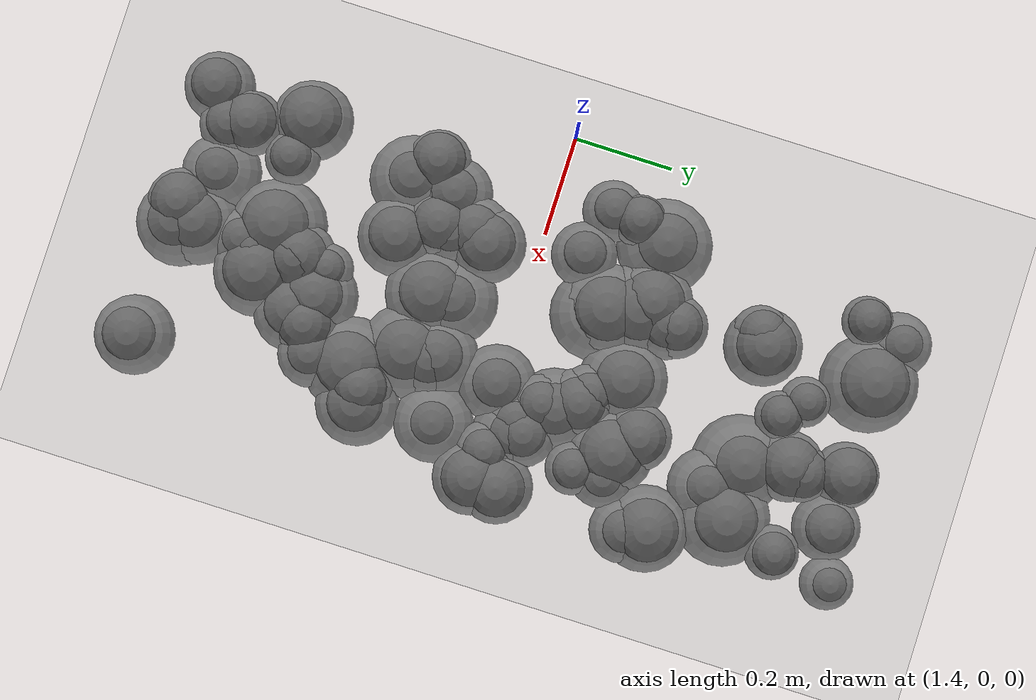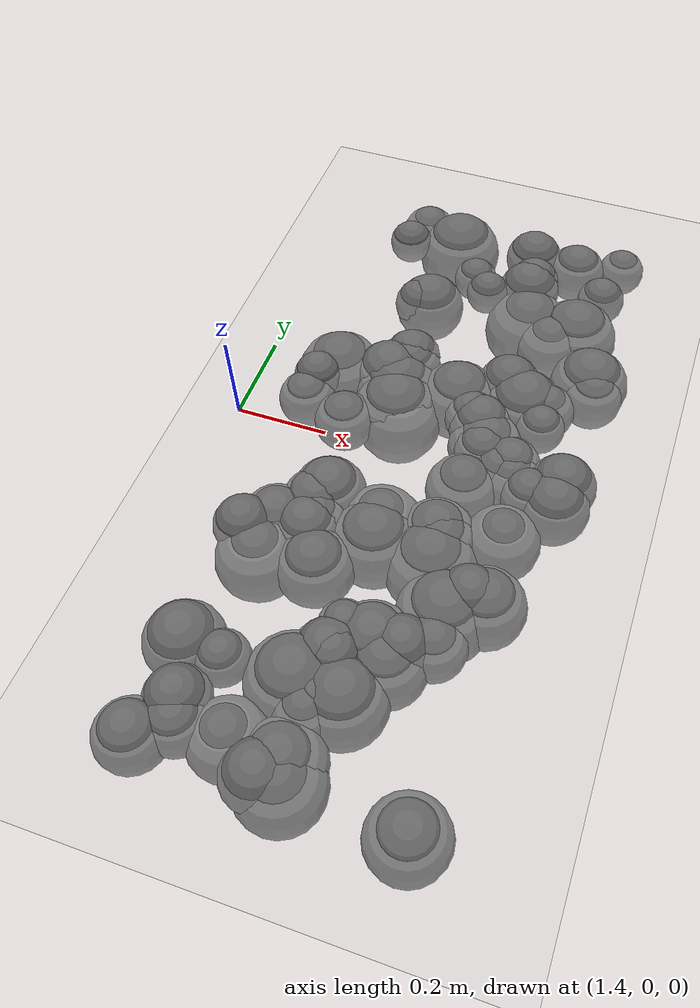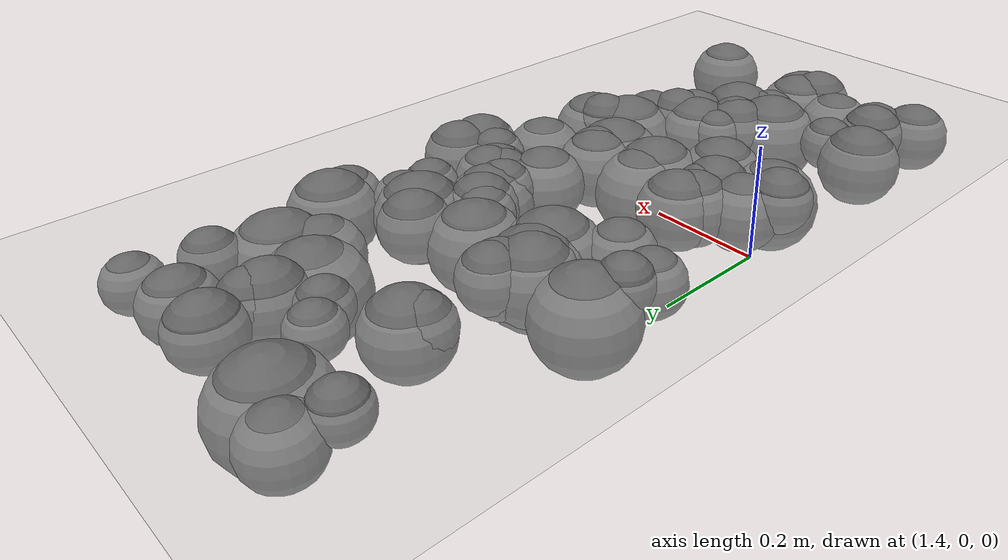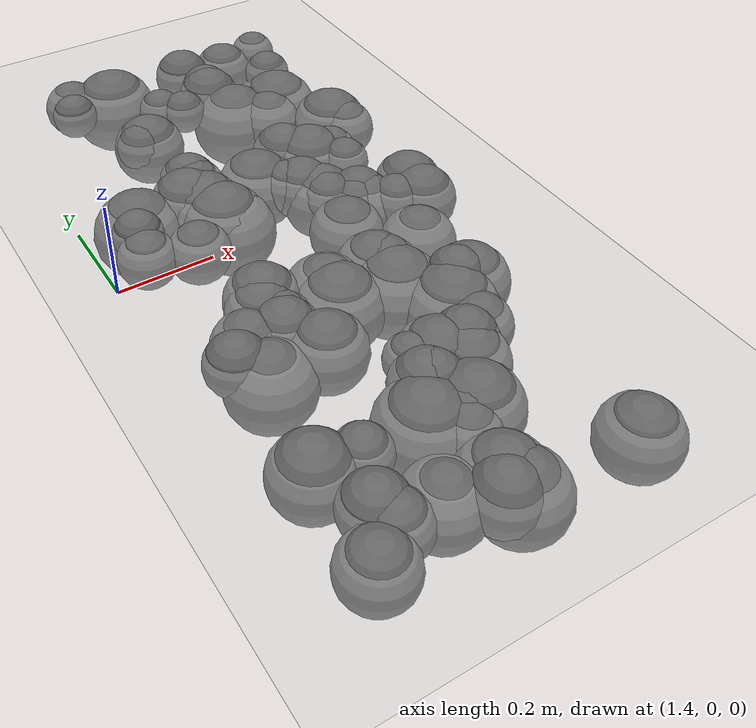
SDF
<sdf version="1.6">
 <world name="high_freq_world">
  <model name="ground_plane">
   <static>true</static>
   <link name="link">
    <collision name="collision">
     <geometry><plane><normal>0 0 1</normal><size>100 100</size></plane></geometry>
     <surface><friction><ode><mu>100.0</mu><mu2>100.0</mu2></ode></friction></surface>
    </collision>
    <visual name="visual">
     <geometry><plane><normal>0 0 1</normal><size>100 100</size></plane></geometry>
     <material><ambient>0.8 0.8 0.8 1</ambient><diffuse>0.8 0.8 0.8 1</diffuse></material>
    </visual>
   </link>
  </model>
  <model name="bump_11">
   <static>true</static>
   <pose>1.570 -0.199 -0.064 0 0 0</pose>
   <link name="link">
    <collision name="collision">
     <geometry><sphere><radius>0.077</radius></sphere></geometry>
     <surface><friction><ode><mu>100.0</mu><mu2>100.0</mu2></ode></friction></surface>
    </collision>
    <visual name="visual">
     <geometry><sphere><radius>0.077</radius></sphere></geometry>
     <material><ambient>0.3 0.3 0.3 1</ambient><diffuse>0.4 0.4 0.4 1</diffuse></material>
    </visual>
   </link>
  </model>
  <model name="bump_13">
   <static>true</static>
   <pose>2.088 0.740 -0.044 0 0 0</pose>
   <link name="link">
    <collision name="collision">
     <geometry><sphere><radius>0.054</radius></sphere></geometry>
     <surface><friction><ode><mu>100.0</mu><mu2>100.0</mu2></ode></friction></surface>
    </collision>
    <visual name="visual">
     <geometry><sphere><radius>0.054</radius></sphere></geometry>
     <material><ambient>0.3 0.3 0.3 1</ambient><diffuse>0.4 0.4 0.4 1</diffuse></material>
    </visual>
   </link>
  </model>
  <model name="bump_23">
   <static>true</static>
   <pose>1.988 0.076 -0.051 0 0 0</pose>
   <link name="link">
    <collision name="collision">
     <geometry><sphere><radius>0.068</radius></sphere></geometry>
     <surface><friction><ode><mu>100.0</mu><mu2>100.0</mu2></ode></friction></surface>
    </collision>
    <visual name="visual">
     <geometry><sphere><radius>0.068</radius></sphere></geometry>
     <material><ambient>0.3 0.3 0.3 1</ambient><diffuse>0.4 0.4 0.4 1</diffuse></material>
    </visual>
   </link>
  </model>
  <model name="bump_24">
   <static>true</static>
   <pose>1.793 -0.394 -0.038 0 0 0</pose>
   <link name="link">
    <collision name="collision">
     <geometry><sphere><radius>0.052</radius></sphere></geometry>
     <surface><friction><ode><mu>100.0</mu><mu2>100.0</mu2></ode></friction></surface>
    </collision>
    <visual name="visual">
     <geometry><sphere><radius>0.052</radius></sphere></geometry>
     <material><ambient>0.3 0.3 0.3 1</ambient><diffuse>0.4 0.4 0.4 1</diffuse></material>
    </visual>
   </link>
  </model>
  <model name="bump_25">
   <static>true</static>
   <pose>1.893 -0.132 -0.065 0 0 0</pose>
   <link name="link">
    <collision name="collision">
     <geometry><sphere><radius>0.082</radius></sphere></geometry>
     <surface><friction><ode><mu>100.0</mu><mu2>100.0</mu2></ode></friction></surface>
    </collision>
    <visual name="visual">
     <geometry><sphere><radius>0.082</radius></sphere></geometry>
     <material><ambient>0.3 0.3 0.3 1</ambient><diffuse>0.4 0.4 0.4 1</diffuse></material>
    </visual>
   </link>
  </model>
  <model name="bump_26">
   <static>true</static>
   <pose>1.692 0.304 -0.043 0 0 0</pose>
   <link name="link">
    <collision name="collision">
     <geometry><sphere><radius>0.065</radius></sphere></geometry>
     <surface><friction><ode><mu>100.0</mu><mu2>100.0</mu2></ode></friction></surface>
    </collision>
    <visual name="visual">
     <geometry><sphere><radius>0.065</radius></sphere></geometry>
     <material><ambient>0.3 0.3 0.3 1</ambient><diffuse>0.4 0.4 0.4 1</diffuse></material>
    </visual>
   </link>
  </model>
  <model name="bump_34">
   <static>true</static>
   <pose>1.900 -0.195 -0.079 0 0 0</pose>
   <link name="link">
    <collision name="collision">
     <geometry><sphere><radius>0.098</radius></sphere></geometry>
     <surface><friction><ode><mu>100.0</mu><mu2>100.0</mu2></ode></friction></surface>
    </collision>
    <visual name="visual">
     <geometry><sphere><radius>0.098</radius></sphere></geometry>
     <material><ambient>0.3 0.3 0.3 1</ambient><diffuse>0.4 0.4 0.4 1</diffuse></material>
    </visual>
   </link>
  </model>
  <model name="bump_42">
   <static>true</static>
   <pose>2.063 0.617 -0.036 0 0 0</pose>
   <link name="link">
    <collision name="collision">
     <geometry><sphere><radius>0.055</radius></sphere></geometry>
     <surface><friction><ode><mu>100.0</mu><mu2>100.0</mu2></ode></friction></surface>
    </collision>
    <visual name="visual">
     <geometry><sphere><radius>0.055</radius></sphere></geometry>
     <material><ambient>0.3 0.3 0.3 1</ambient><diffuse>0.4 0.4 0.4 1</diffuse></material>
    </visual>
   </link>
  </model>
  <model name="bump_44">
   <static>true</static>
   <pose>1.999 -0.258 -0.035 0 0 0</pose>
   <link name="link">
    <collision name="collision">
     <geometry><sphere><radius>0.064</radius></sphere></geometry>
     <surface><friction><ode><mu>100.0</mu><mu2>100.0</mu2></ode></friction></surface>
    </collision>
    <visual name="visual">
     <geometry><sphere><radius>0.064</radius></sphere></geometry>
     <material><ambient>0.3 0.3 0.3 1</ambient><diffuse>0.4 0.4 0.4 1</diffuse></material>
    </visual>
   </link>
  </model>
  <model name="bump_47">
   <static>true</static>
   <pose>1.852 -0.400 -0.061 0 0 0</pose>
   <link name="link">
    <collision name="collision">
     <geometry><sphere><radius>0.083</radius></sphere></geometry>
     <surface><friction><ode><mu>100.0</mu><mu2>100.0</mu2></ode></friction></surface>
    </collision>
    <visual name="visual">
     <geometry><sphere><radius>0.083</radius></sphere></geometry>
     <material><ambient>0.3 0.3 0.3 1</ambient><diffuse>0.4 0.4 0.4 1</diffuse></material>
    </visual>
   </link>
  </model>
  <model name="bump_50">
   <static>true</static>
   <pose>2.024 0.190 -0.038 0 0 0</pose>
   <link name="link">
    <collision name="collision">
     <geometry><sphere><radius>0.054</radius></sphere></geometry>
     <surface><friction><ode><mu>100.0</mu><mu2>100.0</mu2></ode></friction></surface>
    </collision>
    <visual name="visual">
     <geometry><sphere><radius>0.054</radius></sphere></geometry>
     <material><ambient>0.3 0.3 0.3 1</ambient><diffuse>0.4 0.4 0.4 1</diffuse></material>
    </visual>
   </link>
  </model>
  <model name="bump_54">
   <static>true</static>
   <pose>1.671 -0.662 -0.070 0 0 0</pose>
   <link name="link">
    <collision name="collision">
     <geometry><sphere><radius>0.081</radius></sphere></geometry>
     <surface><friction><ode><mu>100.0</mu><mu2>100.0</mu2></ode></friction></surface>
    </collision>
    <visual name="visual">
     <geometry><sphere><radius>0.081</radius></sphere></geometry>
     <material><ambient>0.3 0.3 0.3 1</ambient><diffuse>0.4 0.4 0.4 1</diffuse></material>
    </visual>
   </link>
  </model>
  <model name="bump_55">
   <static>true</static>
   <pose>1.640 -0.208 -0.049 0 0 0</pose>
   <link name="link">
    <collision name="collision">
     <geometry><sphere><radius>0.071</radius></sphere></geometry>
     <surface><friction><ode><mu>100.0</mu><mu2>100.0</mu2></ode></friction></surface>
    </collision>
    <visual name="visual">
     <geometry><sphere><radius>0.071</radius></sphere></geometry>
     <material><ambient>0.3 0.3 0.3 1</ambient><diffuse>0.4 0.4 0.4 1</diffuse></material>
    </visual>
   </link>
  </model>
  <model name="bump_58">
   <static>true</static>
   <pose>1.903 -0.146 -0.061 0 0 0</pose>
   <link name="link">
    <collision name="collision">
     <geometry><sphere><radius>0.077</radius></sphere></geometry>
     <surface><friction><ode><mu>100.0</mu><mu2>100.0</mu2></ode></friction></surface>
    </collision>
    <visual name="visual">
     <geometry><sphere><radius>0.077</radius></sphere></geometry>
     <material><ambient>0.3 0.3 0.3 1</ambient><diffuse>0.4 0.4 0.4 1</diffuse></material>
    </visual>
   </link>
  </model>
  <model name="bump_59">
   <static>true</static>
   <pose>1.683 0.223 -0.075 0 0 0</pose>
   <link name="link">
    <collision name="collision">
     <geometry><sphere><radius>0.097</radius></sphere></geometry>
     <surface><friction><ode><mu>100.0</mu><mu2>100.0</mu2></ode></friction></surface>
    </collision>
    <visual name="visual">
     <geometry><sphere><radius>0.097</radius></sphere></geometry>
     <material><ambient>0.3 0.3 0.3 1</ambient><diffuse>0.4 0.4 0.4 1</diffuse></material>
    </visual>
   </link>
  </model>
  <model name="bump_68">
   <static>true</static>
   <pose>1.890 0.600 -0.043 0 0 0</pose>
   <link name="link">
    <collision name="collision">
     <geometry><sphere><radius>0.072</radius></sphere></geometry>
     <surface><friction><ode><mu>100.0</mu><mu2>100.0</mu2></ode></friction></surface>
    </collision>
    <visual name="visual">
     <geometry><sphere><radius>0.072</radius></sphere></geometry>
     <material><ambient>0.3 0.3 0.3 1</ambient><diffuse>0.4 0.4 0.4 1</diffuse></material>
    </visual>
   </link>
  </model>
  <model name="bump_79">
   <static>true</static>
   <pose>1.926 0.296 -0.045 0 0 0</pose>
   <link name="link">
    <collision name="collision">
     <geometry><sphere><radius>0.070</radius></sphere></geometry>
     <surface><friction><ode><mu>100.0</mu><mu2>100.0</mu2></ode></friction></surface>
    </collision>
    <visual name="visual">
     <geometry><sphere><radius>0.070</radius></sphere></geometry>
     <material><ambient>0.3 0.3 0.3 1</ambient><diffuse>0.4 0.4 0.4 1</diffuse></material>
    </visual>
   </link>
  </model>
  <model name="bump_81">
   <static>true</static>
   <pose>1.758 0.593 -0.036 0 0 0</pose>
   <link name="link">
    <collision name="collision">
     <geometry><sphere><radius>0.051</radius></sphere></geometry>
     <surface><friction><ode><mu>100.0</mu><mu2>100.0</mu2></ode></friction></surface>
    </collision>
    <visual name="visual">
     <geometry><sphere><radius>0.051</radius></sphere></geometry>
     <material><ambient>0.3 0.3 0.3 1</ambient><diffuse>0.4 0.4 0.4 1</diffuse></material>
    </visual>
   </link>
  </model>
  <model name="bump_87">
   <static>true</static>
   <pose>1.649 -0.106 -0.055 0 0 0</pose>
   <link name="link">
    <collision name="collision">
     <geometry><sphere><radius>0.079</radius></sphere></geometry>
     <surface><friction><ode><mu>100.0</mu><mu2>100.0</mu2></ode></friction></surface>
    </collision>
    <visual name="visual">
     <geometry><sphere><radius>0.079</radius></sphere></geometry>
     <material><ambient>0.3 0.3 0.3 1</ambient><diffuse>0.4 0.4 0.4 1</diffuse></material>
    </visual>
   </link>
  </model>
  <model name="bump_91">
   <static>true</static>
   <pose>1.687 -0.282 -0.061 0 0 0</pose>
   <link name="link">
    <collision name="collision">
     <geometry><sphere><radius>0.082</radius></sphere></geometry>
     <surface><friction><ode><mu>100.0</mu><mu2>100.0</mu2></ode></friction></surface>
    </collision>
    <visual name="visual">
     <geometry><sphere><radius>0.082</radius></sphere></geometry>
     <material><ambient>0.3 0.3 0.3 1</ambient><diffuse>0.4 0.4 0.4 1</diffuse></material>
    </visual>
   </link>
  </model>
  <model name="bump_96">
   <static>true</static>
   <pose>1.786 -0.454 -0.046 0 0 0</pose>
   <link name="link">
    <collision name="collision">
     <geometry><sphere><radius>0.072</radius></sphere></geometry>
     <surface><friction><ode><mu>100.0</mu><mu2>100.0</mu2></ode></friction></surface>
    </collision>
    <visual name="visual">
     <geometry><sphere><radius>0.072</radius></sphere></geometry>
     <material><ambient>0.3 0.3 0.3 1</ambient><diffuse>0.4 0.4 0.4 1</diffuse></material>
    </visual>
   </link>
  </model>
  <model name="bump_109">
   <static>true</static>
   <pose>1.649 -0.181 -0.052 0 0 0</pose>
   <link name="link">
    <collision name="collision">
     <geometry><sphere><radius>0.065</radius></sphere></geometry>
     <surface><friction><ode><mu>100.0</mu><mu2>100.0</mu2></ode></friction></surface>
    </collision>
    <visual name="visual">
     <geometry><sphere><radius>0.065</radius></sphere></geometry>
     <material><ambient>0.3 0.3 0.3 1</ambient><diffuse>0.4 0.4 0.4 1</diffuse></material>
    </visual>
   </link>
  </model>
  <model name="bump_116">
   <static>true</static>
   <pose>1.754 -0.713 -0.044 0 0 0</pose>
   <link name="link">
    <collision name="collision">
     <geometry><sphere><radius>0.071</radius></sphere></geometry>
     <surface><friction><ode><mu>100.0</mu><mu2>100.0</mu2></ode></friction></surface>
    </collision>
    <visual name="visual">
     <geometry><sphere><radius>0.071</radius></sphere></geometry>
     <material><ambient>0.3 0.3 0.3 1</ambient><diffuse>0.4 0.4 0.4 1</diffuse></material>
    </visual>
   </link>
  </model>
  <model name="bump_126">
   <static>true</static>
   <pose>1.514 0.172 -0.027 0 0 0</pose>
   <link name="link">
    <collision name="collision">
     <geometry><sphere><radius>0.054</radius></sphere></geometry>
     <surface><friction><ode><mu>100.0</mu><mu2>100.0</mu2></ode></friction></surface>
    </collision>
    <visual name="visual">
     <geometry><sphere><radius>0.054</radius></sphere></geometry>
     <material><ambient>0.3 0.3 0.3 1</ambient><diffuse>0.4 0.4 0.4 1</diffuse></material>
    </visual>
   </link>
  </model>
  <model name="bump_146">
   <static>true</static>
   <pose>1.516 -0.516 -0.054 0 0 0</pose>
   <link name="link">
    <collision name="collision">
     <geometry><sphere><radius>0.082</radius></sphere></geometry>
     <surface><friction><ode><mu>100.0</mu><mu2>100.0</mu2></ode></friction></surface>
    </collision>
    <visual name="visual">
     <geometry><sphere><radius>0.082</radius></sphere></geometry>
     <material><ambient>0.3 0.3 0.3 1</ambient><diffuse>0.4 0.4 0.4 1</diffuse></material>
    </visual>
   </link>
  </model>
  <model name="bump_150">
   <static>true</static>
   <pose>1.961 -0.296 -0.075 0 0 0</pose>
   <link name="link">
    <collision name="collision">
     <geometry><sphere><radius>0.098</radius></sphere></geometry>
     <surface><friction><ode><mu>100.0</mu><mu2>100.0</mu2></ode></friction></surface>
    </collision>
    <visual name="visual">
     <geometry><sphere><radius>0.098</radius></sphere></geometry>
     <material><ambient>0.3 0.3 0.3 1</ambient><diffuse>0.4 0.4 0.4 1</diffuse></material>
    </visual>
   </link>
  </model>
  <model name="bump_153">
   <static>true</static>
   <pose>2.095 0.366 -0.062 0 0 0</pose>
   <link name="link">
    <collision name="collision">
     <geometry><sphere><radius>0.088</radius></sphere></geometry>
     <surface><friction><ode><mu>100.0</mu><mu2>100.0</mu2></ode></friction></surface>
    </collision>
    <visual name="visual">
     <geometry><sphere><radius>0.088</radius></sphere></geometry>
     <material><ambient>0.3 0.3 0.3 1</ambient><diffuse>0.4 0.4 0.4 1</diffuse></material>
    </visual>
   </link>
  </model>
  <model name="bump_156">
   <static>true</static>
   <pose>1.786 -0.574 -0.052 0 0 0</pose>
   <link name="link">
    <collision name="collision">
     <geometry><sphere><radius>0.063</radius></sphere></geometry>
     <surface><friction><ode><mu>100.0</mu><mu2>100.0</mu2></ode></friction></surface>
    </collision>
    <visual name="visual">
     <geometry><sphere><radius>0.063</radius></sphere></geometry>
     <material><ambient>0.3 0.3 0.3 1</ambient><diffuse>0.4 0.4 0.4 1</diffuse></material>
    </visual>
   </link>
  </model>
  <model name="bump_162">
   <static>true</static>
   <pose>1.957 0.241 -0.060 0 0 0</pose>
   <link name="link">
    <collision name="collision">
     <geometry><sphere><radius>0.073</radius></sphere></geometry>
     <surface><friction><ode><mu>100.0</mu><mu2>100.0</mu2></ode></friction></surface>
    </collision>
    <visual name="visual">
     <geometry><sphere><radius>0.073</radius></sphere></geometry>
     <material><ambient>0.3 0.3 0.3 1</ambient><diffuse>0.4 0.4 0.4 1</diffuse></material>
    </visual>
   </link>
  </model>
  <model name="bump_163">
   <static>true</static>
   <pose>1.897 0.164 -0.049 0 0 0</pose>
   <link name="link">
    <collision name="collision">
     <geometry><sphere><radius>0.071</radius></sphere></geometry>
     <surface><friction><ode><mu>100.0</mu><mu2>100.0</mu2></ode></friction></surface>
    </collision>
    <visual name="visual">
     <geometry><sphere><radius>0.071</radius></sphere></geometry>
     <material><ambient>0.3 0.3 0.3 1</ambient><diffuse>0.4 0.4 0.4 1</diffuse></material>
    </visual>
   </link>
  </model>
  <model name="bump_168">
   <static>true</static>
   <pose>1.661 0.244 -0.058 0 0 0</pose>
   <link name="link">
    <collision name="collision">
     <geometry><sphere><radius>0.085</radius></sphere></geometry>
     <surface><friction><ode><mu>100.0</mu><mu2>100.0</mu2></ode></friction></surface>
    </collision>
    <visual name="visual">
     <geometry><sphere><radius>0.085</radius></sphere></geometry>
     <material><ambient>0.3 0.3 0.3 1</ambient><diffuse>0.4 0.4 0.4 1</diffuse></material>
    </visual>
   </link>
  </model>
  <model name="bump_173">
   <static>true</static>
   <pose>1.913 0.511 -0.083 0 0 0</pose>
   <link name="link">
    <collision name="collision">
     <geometry><sphere><radius>0.099</radius></sphere></geometry>
     <surface><friction><ode><mu>100.0</mu><mu2>100.0</mu2></ode></friction></surface>
    </collision>
    <visual name="visual">
     <geometry><sphere><radius>0.099</radius></sphere></geometry>
     <material><ambient>0.3 0.3 0.3 1</ambient><diffuse>0.4 0.4 0.4 1</diffuse></material>
    </visual>
   </link>
  </model>
  <model name="bump_190">
   <static>true</static>
   <pose>1.969 0.056 -0.055 0 0 0</pose>
   <link name="link">
    <collision name="collision">
     <geometry><sphere><radius>0.066</radius></sphere></geometry>
     <surface><friction><ode><mu>100.0</mu><mu2>100.0</mu2></ode></friction></surface>
    </collision>
    <visual name="visual">
     <geometry><sphere><radius>0.066</radius></sphere></geometry>
     <material><ambient>0.3 0.3 0.3 1</ambient><diffuse>0.4 0.4 0.4 1</diffuse></material>
    </visual>
   </link>
  </model>
  <model name="bump_192">
   <static>true</static>
   <pose>1.609 0.086 -0.053 0 0 0</pose>
   <link name="link">
    <collision name="collision">
     <geometry><sphere><radius>0.067</radius></sphere></geometry>
     <surface><friction><ode><mu>100.0</mu><mu2>100.0</mu2></ode></friction></surface>
    </collision>
    <visual name="visual">
     <geometry><sphere><radius>0.067</radius></sphere></geometry>
     <material><ambient>0.3 0.3 0.3 1</ambient><diffuse>0.4 0.4 0.4 1</diffuse></material>
    </visual>
   </link>
  </model>
  <model name="bump_194">
   <static>true</static>
   <pose>2.106 0.058 -0.048 0 0 0</pose>
   <link name="link">
    <collision name="collision">
     <geometry><sphere><radius>0.074</radius></sphere></geometry>
     <surface><friction><ode><mu>100.0</mu><mu2>100.0</mu2></ode></friction></surface>
    </collision>
    <visual name="visual">
     <geometry><sphere><radius>0.074</radius></sphere></geometry>
     <material><ambient>0.3 0.3 0.3 1</ambient><diffuse>0.4 0.4 0.4 1</diffuse></material>
    </visual>
   </link>
  </model>
  <model name="bump_225">
   <static>true</static>
   <pose>1.977 0.454 -0.064 0 0 0</pose>
   <link name="link">
    <collision name="collision">
     <geometry><sphere><radius>0.075</radius></sphere></geometry>
     <surface><friction><ode><mu>100.0</mu><mu2>100.0</mu2></ode></friction></surface>
    </collision>
    <visual name="visual">
     <geometry><sphere><radius>0.075</radius></sphere></geometry>
     <material><ambient>0.3 0.3 0.3 1</ambient><diffuse>0.4 0.4 0.4 1</diffuse></material>
    </visual>
   </link>
  </model>
  <model name="bump_226">
   <static>true</static>
   <pose>1.739 -0.518 -0.072 0 0 0</pose>
   <link name="link">
    <collision name="collision">
     <geometry><sphere><radius>0.098</radius></sphere></geometry>
     <surface><friction><ode><mu>100.0</mu><mu2>100.0</mu2></ode></friction></surface>
    </collision>
    <visual name="visual">
     <geometry><sphere><radius>0.098</radius></sphere></geometry>
     <material><ambient>0.3 0.3 0.3 1</ambient><diffuse>0.4 0.4 0.4 1</diffuse></material>
    </visual>
   </link>
  </model>
  <model name="bump_227">
   <static>true</static>
   <pose>1.568 0.663 -0.028 0 0 0</pose>
   <link name="link">
    <collision name="collision">
     <geometry><sphere><radius>0.051</radius></sphere></geometry>
     <surface><friction><ode><mu>100.0</mu><mu2>100.0</mu2></ode></friction></surface>
    </collision>
    <visual name="visual">
     <geometry><sphere><radius>0.051</radius></sphere></geometry>
     <material><ambient>0.3 0.3 0.3 1</ambient><diffuse>0.4 0.4 0.4 1</diffuse></material>
    </visual>
   </link>
  </model>
  <model name="bump_237">
   <static>true</static>
   <pose>1.656 0.470 -0.037 0 0 0</pose>
   <link name="link">
    <collision name="collision">
     <geometry><sphere><radius>0.059</radius></sphere></geometry>
     <surface><friction><ode><mu>100.0</mu><mu2>100.0</mu2></ode></friction></surface>
    </collision>
    <visual name="visual">
     <geometry><sphere><radius>0.059</radius></sphere></geometry>
     <material><ambient>0.3 0.3 0.3 1</ambient><diffuse>0.4 0.4 0.4 1</diffuse></material>
    </visual>
   </link>
  </model>
  <model name="bump_238">
   <static>true</static>
   <pose>2.032 -0.258 -0.065 0 0 0</pose>
   <link name="link">
    <collision name="collision">
     <geometry><sphere><radius>0.085</radius></sphere></geometry>
     <surface><friction><ode><mu>100.0</mu><mu2>100.0</mu2></ode></friction></surface>
    </collision>
    <visual name="visual">
     <geometry><sphere><radius>0.085</radius></sphere></geometry>
     <material><ambient>0.3 0.3 0.3 1</ambient><diffuse>0.4 0.4 0.4 1</diffuse></material>
    </visual>
   </link>
  </model>
  <model name="bump_243">
   <static>true</static>
   <pose>1.560 -0.630 -0.038 0 0 0</pose>
   <link name="link">
    <collision name="collision">
     <geometry><sphere><radius>0.066</radius></sphere></geometry>
     <surface><friction><ode><mu>100.0</mu><mu2>100.0</mu2></ode></friction></surface>
    </collision>
    <visual name="visual">
     <geometry><sphere><radius>0.066</radius></sphere></geometry>
     <material><ambient>0.3 0.3 0.3 1</ambient><diffuse>0.4 0.4 0.4 1</diffuse></material>
    </visual>
   </link>
  </model>
  <model name="bump_246">
   <static>true</static>
   <pose>1.776 -0.184 -0.072 0 0 0</pose>
   <link name="link">
    <collision name="collision">
     <geometry><sphere><radius>0.094</radius></sphere></geometry>
     <surface><friction><ode><mu>100.0</mu><mu2>100.0</mu2></ode></friction></surface>
    </collision>
    <visual name="visual">
     <geometry><sphere><radius>0.094</radius></sphere></geometry>
     <material><ambient>0.3 0.3 0.3 1</ambient><diffuse>0.4 0.4 0.4 1</diffuse></material>
    </visual>
   </link>
  </model>
  <model name="bump_251">
   <static>true</static>
   <pose>1.908 -0.003 -0.064 0 0 0</pose>
   <link name="link">
    <collision name="collision">
     <geometry><sphere><radius>0.079</radius></sphere></geometry>
     <surface><friction><ode><mu>100.0</mu><mu2>100.0</mu2></ode></friction></surface>
    </collision>
    <visual name="visual">
     <geometry><sphere><radius>0.079</radius></sphere></geometry>
     <material><ambient>0.3 0.3 0.3 1</ambient><diffuse>0.4 0.4 0.4 1</diffuse></material>
    </visual>
   </link>
  </model>
  <model name="bump_258">
   <static>true</static>
   <pose>1.794 -0.459 -0.037 0 0 0</pose>
   <link name="link">
    <collision name="collision">
     <geometry><sphere><radius>0.063</radius></sphere></geometry>
     <surface><friction><ode><mu>100.0</mu><mu2>100.0</mu2></ode></friction></surface>
    </collision>
    <visual name="visual">
     <geometry><sphere><radius>0.063</radius></sphere></geometry>
     <material><ambient>0.3 0.3 0.3 1</ambient><diffuse>0.4 0.4 0.4 1</diffuse></material>
    </visual>
   </link>
  </model>
  <model name="bump_280">
   <static>true</static>
   <pose>2.035 -0.726 -0.062 0 0 0</pose>
   <link name="link">
    <collision name="collision">
     <geometry><sphere><radius>0.081</radius></sphere></geometry>
     <surface><friction><ode><mu>100.0</mu><mu2>100.0</mu2></ode></friction></surface>
    </collision>
    <visual name="visual">
     <geometry><sphere><radius>0.081</radius></sphere></geometry>
     <material><ambient>0.3 0.3 0.3 1</ambient><diffuse>0.4 0.4 0.4 1</diffuse></material>
    </visual>
   </link>
  </model>
  <model name="bump_291">
   <static>true</static>
   <pose>2.022 -0.101 -0.070 0 0 0</pose>
   <link name="link">
    <collision name="collision">
     <geometry><sphere><radius>0.081</radius></sphere></geometry>
     <surface><friction><ode><mu>100.0</mu><mu2>100.0</mu2></ode></friction></surface>
    </collision>
    <visual name="visual">
     <geometry><sphere><radius>0.081</radius></sphere></geometry>
     <material><ambient>0.3 0.3 0.3 1</ambient><diffuse>0.4 0.4 0.4 1</diffuse></material>
    </visual>
   </link>
  </model>
  <model name="bump_299">
   <static>true</static>
   <pose>1.508 -0.716 -0.052 0 0 0</pose>
   <link name="link">
    <collision name="collision">
     <geometry><sphere><radius>0.072</radius></sphere></geometry>
     <surface><friction><ode><mu>100.0</mu><mu2>100.0</mu2></ode></friction></surface>
    </collision>
    <visual name="visual">
     <geometry><sphere><radius>0.072</radius></sphere></geometry>
     <material><ambient>0.3 0.3 0.3 1</ambient><diffuse>0.4 0.4 0.4 1</diffuse></material>
    </visual>
   </link>
  </model>
  <model name="bump_300">
   <static>true</static>
   <pose>1.775 -0.138 -0.079 0 0 0</pose>
   <link name="link">
    <collision name="collision">
     <geometry><sphere><radius>0.091</radius></sphere></geometry>
     <surface><friction><ode><mu>100.0</mu><mu2>100.0</mu2></ode></friction></surface>
    </collision>
    <visual name="visual">
     <geometry><sphere><radius>0.091</radius></sphere></geometry>
     <material><ambient>0.3 0.3 0.3 1</ambient><diffuse>0.4 0.4 0.4 1</diffuse></material>
    </visual>
   </link>
  </model>
  <model name="bump_305">
   <static>true</static>
   <pose>1.873 0.713 -0.038 0 0 0</pose>
   <link name="link">
    <collision name="collision">
     <geometry><sphere><radius>0.067</radius></sphere></geometry>
     <surface><friction><ode><mu>100.0</mu><mu2>100.0</mu2></ode></friction></surface>
    </collision>
    <visual name="visual">
     <geometry><sphere><radius>0.067</radius></sphere></geometry>
     <material><ambient>0.3 0.3 0.3 1</ambient><diffuse>0.4 0.4 0.4 1</diffuse></material>
    </visual>
   </link>
  </model>
  <model name="bump_309">
   <static>true</static>
   <pose>1.508 0.116 -0.049 0 0 0</pose>
   <link name="link">
    <collision name="collision">
     <geometry><sphere><radius>0.063</radius></sphere></geometry>
     <surface><friction><ode><mu>100.0</mu><mu2>100.0</mu2></ode></friction></surface>
    </collision>
    <visual name="visual">
     <geometry><sphere><radius>0.063</radius></sphere></geometry>
     <material><ambient>0.3 0.3 0.3 1</ambient><diffuse>0.4 0.4 0.4 1</diffuse></material>
    </visual>
   </link>
  </model>
  <model name="bump_315">
   <static>true</static>
   <pose>1.872 0.179 -0.045 0 0 0</pose>
   <link name="link">
    <collision name="collision">
     <geometry><sphere><radius>0.060</radius></sphere></geometry>
     <surface><friction><ode><mu>100.0</mu><mu2>100.0</mu2></ode></friction></surface>
    </collision>
    <visual name="visual">
     <geometry><sphere><radius>0.060</radius></sphere></geometry>
     <material><ambient>0.3 0.3 0.3 1</ambient><diffuse>0.4 0.4 0.4 1</diffuse></material>
    </visual>
   </link>
  </model>
  <model name="bump_327">
   <static>true</static>
   <pose>1.602 -0.530 -0.039 0 0 0</pose>
   <link name="link">
    <collision name="collision">
     <geometry><sphere><radius>0.056</radius></sphere></geometry>
     <surface><friction><ode><mu>100.0</mu><mu2>100.0</mu2></ode></friction></surface>
    </collision>
    <visual name="visual">
     <geometry><sphere><radius>0.056</radius></sphere></geometry>
     <material><ambient>0.3 0.3 0.3 1</ambient><diffuse>0.4 0.4 0.4 1</diffuse></material>
    </visual>
   </link>
  </model>
  <model name="bump_330">
   <static>true</static>
   <pose>2.029 0.509 -0.075 0 0 0</pose>
   <link name="link">
    <collision name="collision">
     <geometry><sphere><radius>0.097</radius></sphere></geometry>
     <surface><friction><ode><mu>100.0</mu><mu2>100.0</mu2></ode></friction></surface>
    </collision>
    <visual name="visual">
     <geometry><sphere><radius>0.097</radius></sphere></geometry>
     <material><ambient>0.3 0.3 0.3 1</ambient><diffuse>0.4 0.4 0.4 1</diffuse></material>
    </visual>
   </link>
  </model>
  <model name="bump_332">
   <static>true</static>
   <pose>1.964 -0.375 -0.056 0 0 0</pose>
   <link name="link">
    <collision name="collision">
     <geometry><sphere><radius>0.069</radius></sphere></geometry>
     <surface><friction><ode><mu>100.0</mu><mu2>100.0</mu2></ode></friction></surface>
    </collision>
    <visual name="visual">
     <geometry><sphere><radius>0.069</radius></sphere></geometry>
     <material><ambient>0.3 0.3 0.3 1</ambient><diffuse>0.4 0.4 0.4 1</diffuse></material>
    </visual>
   </link>
  </model>
  <model name="bump_340">
   <static>true</static>
   <pose>1.574 -0.668 -0.048 0 0 0</pose>
   <link name="link">
    <collision name="collision">
     <geometry><sphere><radius>0.066</radius></sphere></geometry>
     <surface><friction><ode><mu>100.0</mu><mu2>100.0</mu2></ode></friction></surface>
    </collision>
    <visual name="visual">
     <geometry><sphere><radius>0.066</radius></sphere></geometry>
     <material><ambient>0.3 0.3 0.3 1</ambient><diffuse>0.4 0.4 0.4 1</diffuse></material>
    </visual>
   </link>
  </model>
  <model name="bump_343">
   <static>true</static>
   <pose>1.693 0.284 -0.053 0 0 0</pose>
   <link name="link">
    <collision name="collision">
     <geometry><sphere><radius>0.072</radius></sphere></geometry>
     <surface><friction><ode><mu>100.0</mu><mu2>100.0</mu2></ode></friction></surface>
    </collision>
    <visual name="visual">
     <geometry><sphere><radius>0.072</radius></sphere></geometry>
     <material><ambient>0.3 0.3 0.3 1</ambient><diffuse>0.4 0.4 0.4 1</diffuse></material>
    </visual>
   </link>
  </model>
  <model name="bump_344">
   <static>true</static>
   <pose>1.677 0.483 -0.054 0 0 0</pose>
   <link name="link">
    <collision name="collision">
     <geometry><sphere><radius>0.080</radius></sphere></geometry>
     <surface><friction><ode><mu>100.0</mu><mu2>100.0</mu2></ode></friction></surface>
    </collision>
    <visual name="visual">
     <geometry><sphere><radius>0.080</radius></sphere></geometry>
     <material><ambient>0.3 0.3 0.3 1</ambient><diffuse>0.4 0.4 0.4 1</diffuse></material>
    </visual>
   </link>
  </model>
  <model name="bump_346">
   <static>true</static>
   <pose>1.702 0.161 -0.073 0 0 0</pose>
   <link name="link">
    <collision name="collision">
     <geometry><sphere><radius>0.097</radius></sphere></geometry>
     <surface><friction><ode><mu>100.0</mu><mu2>100.0</mu2></ode></friction></surface>
    </collision>
    <visual name="visual">
     <geometry><sphere><radius>0.097</radius></sphere></geometry>
     <material><ambient>0.3 0.3 0.3 1</ambient><diffuse>0.4 0.4 0.4 1</diffuse></material>
    </visual>
   </link>
  </model>
  <model name="bump_352">
   <static>true</static>
   <pose>1.825 0.237 -0.070 0 0 0</pose>
   <link name="link">
    <collision name="collision">
     <geometry><sphere><radius>0.090</radius></sphere></geometry>
     <surface><friction><ode><mu>100.0</mu><mu2>100.0</mu2></ode></friction></surface>
    </collision>
    <visual name="visual">
     <geometry><sphere><radius>0.090</radius></sphere></geometry>
     <material><ambient>0.3 0.3 0.3 1</ambient><diffuse>0.4 0.4 0.4 1</diffuse></material>
    </visual>
   </link>
  </model>
  <model name="bump_355">
   <static>true</static>
   <pose>2.043 0.013 -0.042 0 0 0</pose>
   <link name="link">
    <collision name="collision">
     <geometry><sphere><radius>0.059</radius></sphere></geometry>
     <surface><friction><ode><mu>100.0</mu><mu2>100.0</mu2></ode></friction></surface>
    </collision>
    <visual name="visual">
     <geometry><sphere><radius>0.059</radius></sphere></geometry>
     <material><ambient>0.3 0.3 0.3 1</ambient><diffuse>0.4 0.4 0.4 1</diffuse></material>
    </visual>
   </link>
  </model>
  <model name="bump_362">
   <static>true</static>
   <pose>1.895 0.627 -0.035 0 0 0</pose>
   <link name="link">
    <collision name="collision">
     <geometry><sphere><radius>0.059</radius></sphere></geometry>
     <surface><friction><ode><mu>100.0</mu><mu2>100.0</mu2></ode></friction></surface>
    </collision>
    <visual name="visual">
     <geometry><sphere><radius>0.059</radius></sphere></geometry>
     <material><ambient>0.3 0.3 0.3 1</ambient><diffuse>0.4 0.4 0.4 1</diffuse></material>
    </visual>
   </link>
  </model>
  <model name="bump_363">
   <static>true</static>
   <pose>1.839 -0.529 -0.067 0 0 0</pose>
   <link name="link">
    <collision name="collision">
     <geometry><sphere><radius>0.092</radius></sphere></geometry>
     <surface><friction><ode><mu>100.0</mu><mu2>100.0</mu2></ode></friction></surface>
    </collision>
    <visual name="visual">
     <geometry><sphere><radius>0.092</radius></sphere></geometry>
     <material><ambient>0.3 0.3 0.3 1</ambient><diffuse>0.4 0.4 0.4 1</diffuse></material>
    </visual>
   </link>
  </model>
  <model name="bump_364">
   <static>true</static>
   <pose>1.781 -0.674 -0.066 0 0 0</pose>
   <link name="link">
    <collision name="collision">
     <geometry><sphere><radius>0.086</radius></sphere></geometry>
     <surface><friction><ode><mu>100.0</mu><mu2>100.0</mu2></ode></friction></surface>
    </collision>
    <visual name="visual">
     <geometry><sphere><radius>0.086</radius></sphere></geometry>
     <material><ambient>0.3 0.3 0.3 1</ambient><diffuse>0.4 0.4 0.4 1</diffuse></material>
    </visual>
   </link>
  </model>
  <model name="bump_381">
   <static>true</static>
   <pose>2.110 0.324 -0.054 0 0 0</pose>
   <link name="link">
    <collision name="collision">
     <geometry><sphere><radius>0.068</radius></sphere></geometry>
     <surface><friction><ode><mu>100.0</mu><mu2>100.0</mu2></ode></friction></surface>
    </collision>
    <visual name="visual">
     <geometry><sphere><radius>0.068</radius></sphere></geometry>
     <material><ambient>0.3 0.3 0.3 1</ambient><diffuse>0.4 0.4 0.4 1</diffuse></material>
    </visual>
   </link>
  </model>
  <model name="bump_382">
   <static>true</static>
   <pose>1.801 -0.548 -0.040 0 0 0</pose>
   <link name="link">
    <collision name="collision">
     <geometry><sphere><radius>0.053</radius></sphere></geometry>
     <surface><friction><ode><mu>100.0</mu><mu2>100.0</mu2></ode></friction></surface>
    </collision>
    <visual name="visual">
     <geometry><sphere><radius>0.053</radius></sphere></geometry>
     <material><ambient>0.3 0.3 0.3 1</ambient><diffuse>0.4 0.4 0.4 1</diffuse></material>
    </visual>
   </link>
  </model>
  <model name="bump_383">
   <static>true</static>
   <pose>1.682 0.709 -0.073 0 0 0</pose>
   <link name="link">
    <collision name="collision">
     <geometry><sphere><radius>0.100</radius></sphere></geometry>
     <surface><friction><ode><mu>100.0</mu><mu2>100.0</mu2></ode></friction></surface>
    </collision>
    <visual name="visual">
     <geometry><sphere><radius>0.100</radius></sphere></geometry>
     <material><ambient>0.3 0.3 0.3 1</ambient><diffuse>0.4 0.4 0.4 1</diffuse></material>
    </visual>
   </link>
  </model>
  <model name="bump_391">
   <static>true</static>
   <pose>1.565 -0.288 -0.079 0 0 0</pose>
   <link name="link">
    <collision name="collision">
     <geometry><sphere><radius>0.091</radius></sphere></geometry>
     <surface><friction><ode><mu>100.0</mu><mu2>100.0</mu2></ode></friction></surface>
    </collision>
    <visual name="visual">
     <geometry><sphere><radius>0.091</radius></sphere></geometry>
     <material><ambient>0.3 0.3 0.3 1</ambient><diffuse>0.4 0.4 0.4 1</diffuse></material>
    </visual>
   </link>
  </model>
  <model name="bump_394">
   <static>true</static>
   <pose>1.892 -0.436 -0.066 0 0 0</pose>
   <link name="link">
    <collision name="collision">
     <geometry><sphere><radius>0.084</radius></sphere></geometry>
     <surface><friction><ode><mu>100.0</mu><mu2>100.0</mu2></ode></friction></surface>
    </collision>
    <visual name="visual">
     <geometry><sphere><radius>0.084</radius></sphere></geometry>
     <material><ambient>0.3 0.3 0.3 1</ambient><diffuse>0.4 0.4 0.4 1</diffuse></material>
    </visual>
   </link>
  </model>
  <model name="bump_405">
   <static>true</static>
   <pose>1.519 -0.247 -0.036 0 0 0</pose>
   <link name="link">
    <collision name="collision">
     <geometry><sphere><radius>0.064</radius></sphere></geometry>
     <surface><friction><ode><mu>100.0</mu><mu2>100.0</mu2></ode></friction></surface>
    </collision>
    <visual name="visual">
     <geometry><sphere><radius>0.064</radius></sphere></geometry>
     <material><ambient>0.3 0.3 0.3 1</ambient><diffuse>0.4 0.4 0.4 1</diffuse></material>
    </visual>
   </link>
  </model>
  <model name="bump_407">
   <static>true</static>
   <pose>1.911 -0.402 -0.039 0 0 0</pose>
   <link name="link">
    <collision name="collision">
     <geometry><sphere><radius>0.065</radius></sphere></geometry>
     <surface><friction><ode><mu>100.0</mu><mu2>100.0</mu2></ode></friction></surface>
    </collision>
    <visual name="visual">
     <geometry><sphere><radius>0.065</radius></sphere></geometry>
     <material><ambient>0.3 0.3 0.3 1</ambient><diffuse>0.4 0.4 0.4 1</diffuse></material>
    </visual>
   </link>
  </model>
  <model name="bump_413">
   <static>true</static>
   <pose>1.800 0.552 -0.031 0 0 0</pose>
   <link name="link">
    <collision name="collision">
     <geometry><sphere><radius>0.050</radius></sphere></geometry>
     <surface><friction><ode><mu>100.0</mu><mu2>100.0</mu2></ode></friction></surface>
    </collision>
    <visual name="visual">
     <geometry><sphere><radius>0.050</radius></sphere></geometry>
     <material><ambient>0.3 0.3 0.3 1</ambient><diffuse>0.4 0.4 0.4 1</diffuse></material>
    </visual>
   </link>
  </model>
  <model name="bump_418">
   <static>true</static>
   <pose>1.792 -0.711 -0.073 0 0 0</pose>
   <link name="link">
    <collision name="collision">
     <geometry><sphere><radius>0.089</radius></sphere></geometry>
     <surface><friction><ode><mu>100.0</mu><mu2>100.0</mu2></ode></friction></surface>
    </collision>
    <visual name="visual">
     <geometry><sphere><radius>0.089</radius></sphere></geometry>
     <material><ambient>0.3 0.3 0.3 1</ambient><diffuse>0.4 0.4 0.4 1</diffuse></material>
    </visual>
   </link>
  </model>
  <model name="bump_425">
   <static>true</static>
   <pose>1.714 0.146 -0.084 0 0 0</pose>
   <link name="link">
    <collision name="collision">
     <geometry><sphere><radius>0.095</radius></sphere></geometry>
     <surface><friction><ode><mu>100.0</mu><mu2>100.0</mu2></ode></friction></surface>
    </collision>
    <visual name="visual">
     <geometry><sphere><radius>0.095</radius></sphere></geometry>
     <material><ambient>0.3 0.3 0.3 1</ambient><diffuse>0.4 0.4 0.4 1</diffuse></material>
    </visual>
   </link>
  </model>
  <model name="bump_428">
   <static>true</static>
   <pose>2.023 0.252 -0.052 0 0 0</pose>
   <link name="link">
    <collision name="collision">
     <geometry><sphere><radius>0.063</radius></sphere></geometry>
     <surface><friction><ode><mu>100.0</mu><mu2>100.0</mu2></ode></friction></surface>
    </collision>
    <visual name="visual">
     <geometry><sphere><radius>0.063</radius></sphere></geometry>
     <material><ambient>0.3 0.3 0.3 1</ambient><diffuse>0.4 0.4 0.4 1</diffuse></material>
    </visual>
   </link>
  </model>
  <model name="bump_433">
   <static>true</static>
   <pose>1.921 0.094 -0.043 0 0 0</pose>
   <link name="link">
    <collision name="collision">
     <geometry><sphere><radius>0.061</radius></sphere></geometry>
     <surface><friction><ode><mu>100.0</mu><mu2>100.0</mu2></ode></friction></surface>
    </collision>
    <visual name="visual">
     <geometry><sphere><radius>0.061</radius></sphere></geometry>
     <material><ambient>0.3 0.3 0.3 1</ambient><diffuse>0.4 0.4 0.4 1</diffuse></material>
    </visual>
   </link>
  </model>
  <model name="bump_438">
   <static>true</static>
   <pose>1.541 0.236 -0.080 0 0 0</pose>
   <link name="link">
    <collision name="collision">
     <geometry><sphere><radius>0.098</radius></sphere></geometry>
     <surface><friction><ode><mu>100.0</mu><mu2>100.0</mu2></ode></friction></surface>
    </collision>
    <visual name="visual">
     <geometry><sphere><radius>0.098</radius></sphere></geometry>
     <material><ambient>0.3 0.3 0.3 1</ambient><diffuse>0.4 0.4 0.4 1</diffuse></material>
    </visual>
   </link>
  </model>
  <model name="bump_446">
   <static>true</static>
   <pose>1.983 0.708 -0.050 0 0 0</pose>
   <link name="link">
    <collision name="collision">
     <geometry><sphere><radius>0.069</radius></sphere></geometry>
     <surface><friction><ode><mu>100.0</mu><mu2>100.0</mu2></ode></friction></surface>
    </collision>
    <visual name="visual">
     <geometry><sphere><radius>0.069</radius></sphere></geometry>
     <material><ambient>0.3 0.3 0.3 1</ambient><diffuse>0.4 0.4 0.4 1</diffuse></material>
    </visual>
   </link>
  </model>
  <model name="bump_463">
   <static>true</static>
   <pose>1.922 0.123 -0.067 0 0 0</pose>
   <link name="link">
    <collision name="collision">
     <geometry><sphere><radius>0.083</radius></sphere></geometry>
     <surface><friction><ode><mu>100.0</mu><mu2>100.0</mu2></ode></friction></surface>
    </collision>
    <visual name="visual">
     <geometry><sphere><radius>0.083</radius></sphere></geometry>
     <material><ambient>0.3 0.3 0.3 1</ambient><diffuse>0.4 0.4 0.4 1</diffuse></material>
    </visual>
   </link>
  </model>
  <model name="bump_465">
   <static>true</static>
   <pose>1.591 0.741 -0.056 0 0 0</pose>
   <link name="link">
    <collision name="collision">
     <geometry><sphere><radius>0.066</radius></sphere></geometry>
     <surface><friction><ode><mu>100.0</mu><mu2>100.0</mu2></ode></friction></surface>
    </collision>
    <visual name="visual">
     <geometry><sphere><radius>0.066</radius></sphere></geometry>
     <material><ambient>0.3 0.3 0.3 1</ambient><diffuse>0.4 0.4 0.4 1</diffuse></material>
    </visual>
   </link>
  </model>
  <model name="bump_466">
   <static>true</static>
   <pose>1.970 0.254 -0.062 0 0 0</pose>
   <link name="link">
    <collision name="collision">
     <geometry><sphere><radius>0.089</radius></sphere></geometry>
     <surface><friction><ode><mu>100.0</mu><mu2>100.0</mu2></ode></friction></surface>
    </collision>
    <visual name="visual">
     <geometry><sphere><radius>0.089</radius></sphere></geometry>
     <material><ambient>0.3 0.3 0.3 1</ambient><diffuse>0.4 0.4 0.4 1</diffuse></material>
    </visual>
   </link>
  </model>
  <model name="bump_468">
   <static>true</static>
   <pose>1.632 -0.137 -0.056 0 0 0</pose>
   <link name="link">
    <collision name="collision">
     <geometry><sphere><radius>0.075</radius></sphere></geometry>
     <surface><friction><ode><mu>100.0</mu><mu2>100.0</mu2></ode></friction></surface>
    </collision>
    <visual name="visual">
     <geometry><sphere><radius>0.075</radius></sphere></geometry>
     <material><ambient>0.3 0.3 0.3 1</ambient><diffuse>0.4 0.4 0.4 1</diffuse></material>
    </visual>
   </link>
  </model>
  <model name="bump_473">
   <static>true</static>
   <pose>1.993 0.054 -0.068 0 0 0</pose>
   <link name="link">
    <collision name="collision">
     <geometry><sphere><radius>0.079</radius></sphere></geometry>
     <surface><friction><ode><mu>100.0</mu><mu2>100.0</mu2></ode></friction></surface>
    </collision>
    <visual name="visual">
     <geometry><sphere><radius>0.079</radius></sphere></geometry>
     <material><ambient>0.3 0.3 0.3 1</ambient><diffuse>0.4 0.4 0.4 1</diffuse></material>
    </visual>
   </link>
  </model>
  <model name="bump_496">
   <static>true</static>
   <pose>2.102 0.003 -0.052 0 0 0</pose>
   <link name="link">
    <collision name="collision">
     <geometry><sphere><radius>0.077</radius></sphere></geometry>
     <surface><friction><ode><mu>100.0</mu><mu2>100.0</mu2></ode></friction></surface>
    </collision>
    <visual name="visual">
     <geometry><sphere><radius>0.077</radius></sphere></geometry>
     <material><ambient>0.3 0.3 0.3 1</ambient><diffuse>0.4 0.4 0.4 1</diffuse></material>
    </visual>
   </link>
  </model>
 </world>
</sdf>
